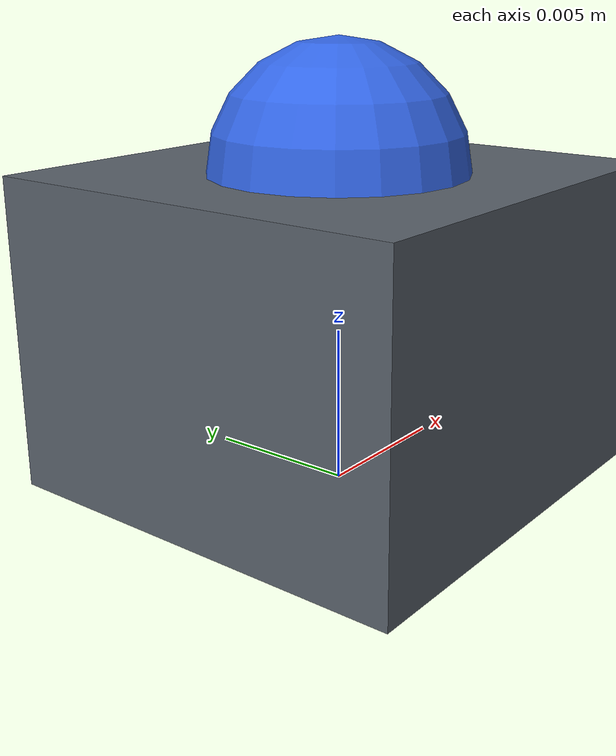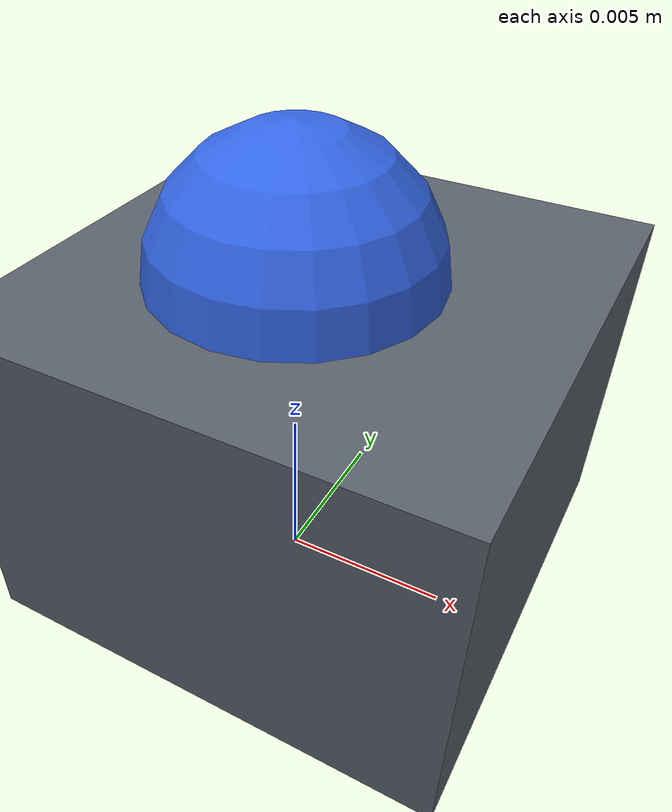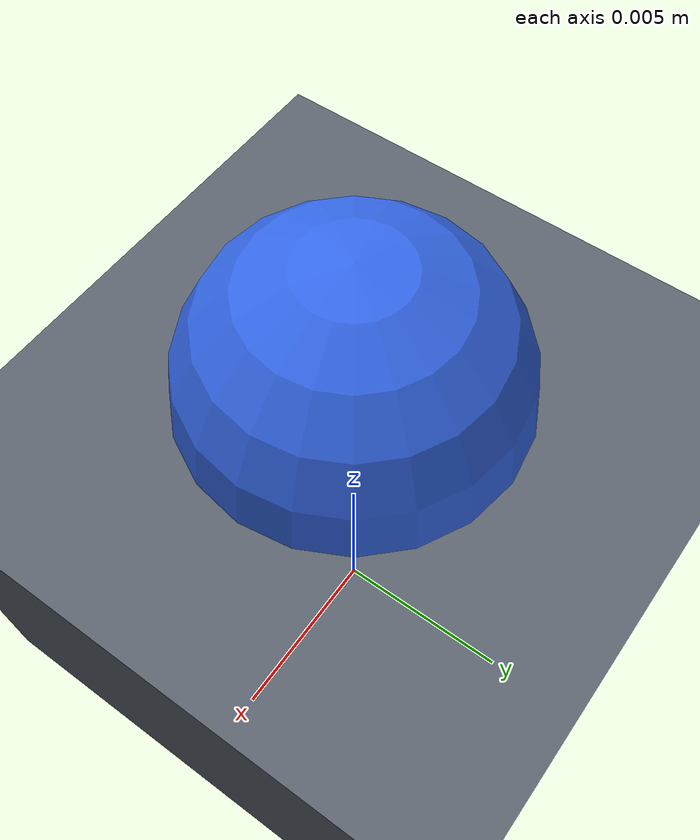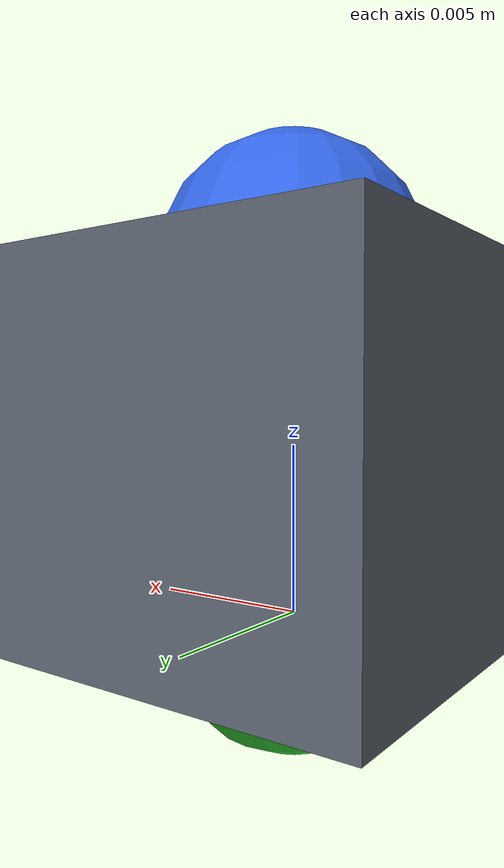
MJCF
<?xml version="1.0" encoding="utf-8"?>
<mujoco model="stock universal arm adapter example">
  <worldbody>
    <body name="arm_adapter_EXAMPLE">
      <geom name="arm_adapter_plate_EXAMPLE" type="box" size="0.09 0.09 0.005" pos="0 0 0.005" mass="0.875" rgba="0.35 0.38 0.42 1"/>
      <site name="base_mount_plane_EXAMPLE" pos="0 0 0" size="0.004" rgba="0.2 0.8 0.2 1"/>
      <site name="arm_mount_plane_EXAMPLE" pos="0 0 0.01" size="0.004" rgba="0.2 0.4 0.9 1"/>
    </body>
  </worldbody>
</mujoco>
